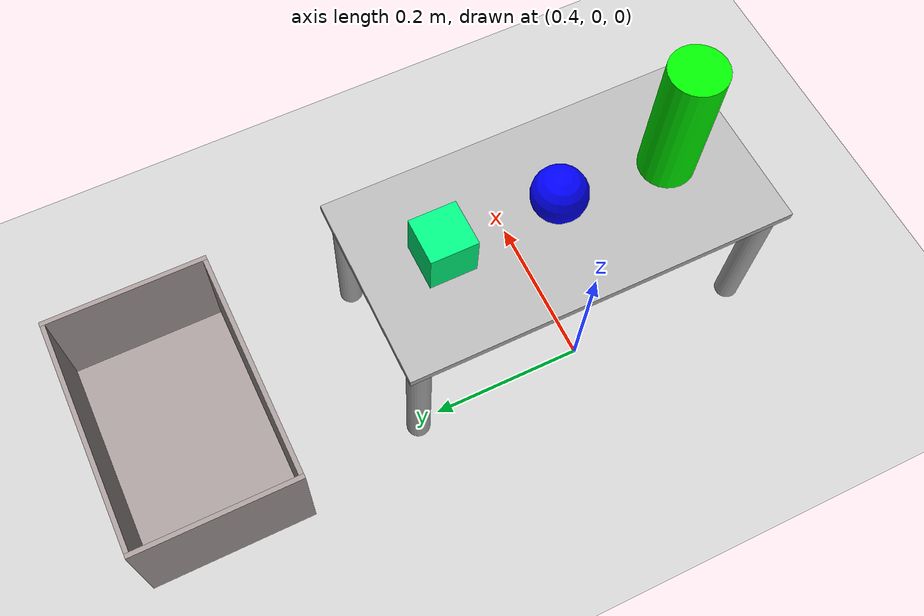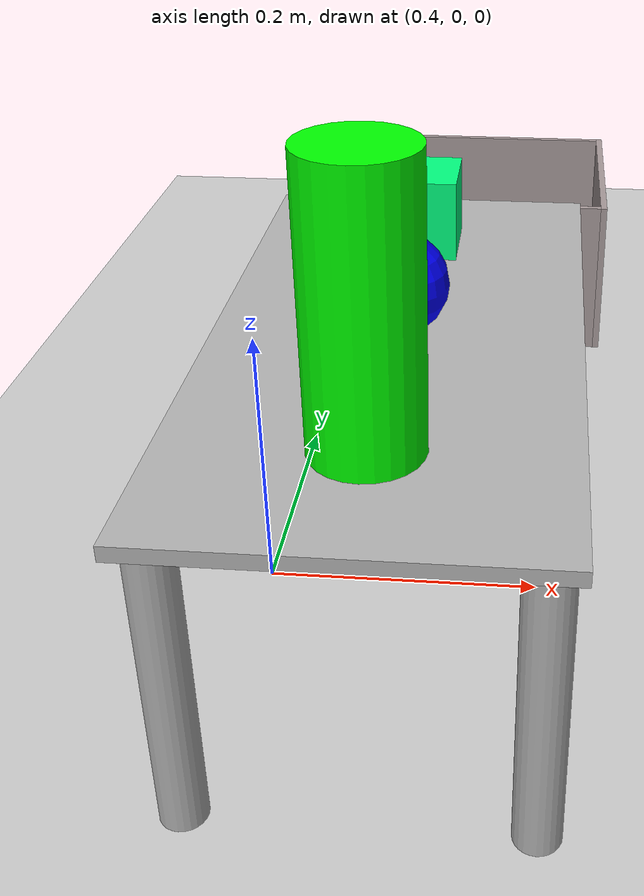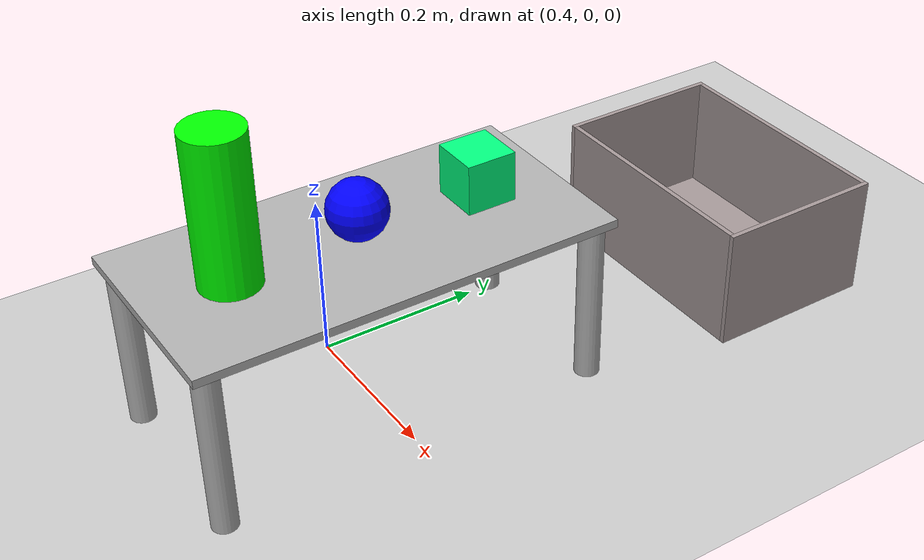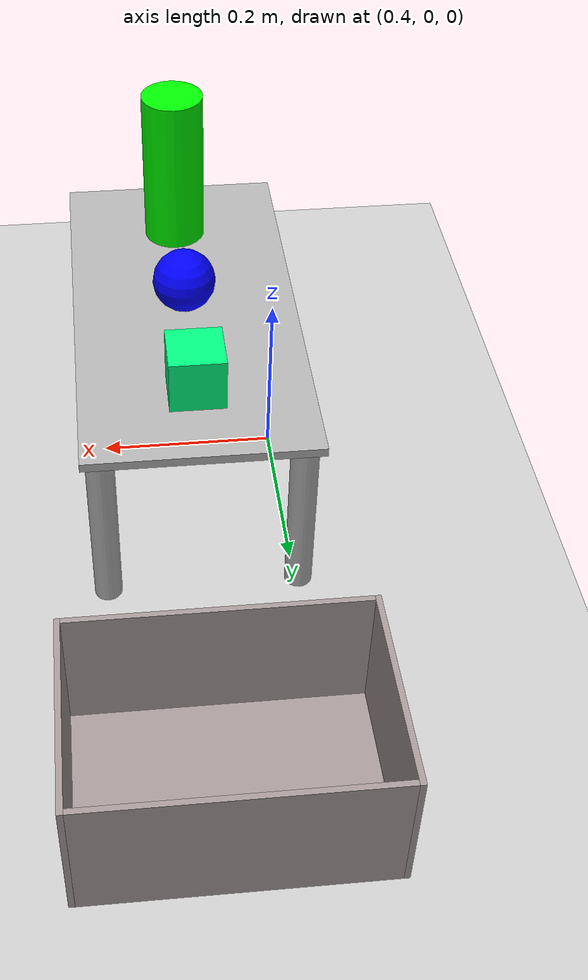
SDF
<sdf version='1.6'>
  <world name='default'>
    <scene>
      <shadows>0</shadows>
    </scene>

    <light name='sun' type='directional'>
      <cast_shadows>0</cast_shadows>
      <pose frame=''>0 0 5 0 -0 0</pose>
      <diffuse>0.8 0.8 0.8 1</diffuse>
      <specular>0.1 0.1 0.1 1</specular>
      <attenuation>
        <range>1000</range>
        <constant>0.9</constant>
        <linear>0.01</linear>
        <quadratic>0.001</quadratic>
      </attenuation>
      <direction>-0.5 0.5 -1</direction>
    </light>

    <physics type='ode'>
      <max_step_size>0.001</max_step_size>
      <real_time_factor>1</real_time_factor>
      <real_time_update_rate>1000</real_time_update_rate>
      <gravity>0 0 -9.8</gravity>
    </physics>

    <include>
      <uri>model://ground_plane</uri>
    </include>

    <include>
      <pose> 0.5 0 0  0 0 0</pose>
      <uri>model://ra_table</uri>
    </include>

    <include>
      <pose> 0.5 0.5 0  0 0 1.5707963</pose>
      <uri>model://ra_basket</uri>
    </include>

    <!-- objects on table -->
    <include>
      <pose> 0.5 0 0.246  0 0 0</pose>
      <uri>model://ra_ball_large</uri>
    </include>

    <include>
      <pose> 0.5 0.15 0.211  0 0 0</pose>
      <uri>model://ra_cube_medium</uri>
    </include>

    <include>
      <pose> 0.5 -0.15 0.211  0 0 0</pose>
      <uri>model://ra_cylinder_large</uri>
    </include>
  </world>
</sdf>

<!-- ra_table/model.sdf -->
<sdf version="1.5">
  <model name="ra_table">
    <static>True</static>
    <link name="link">
      <collision name="plate">
        <pose>0 0 0.205  0 0 0</pose>
        <geometry>
          <box> <size> 0.25 0.50 0.01 </size> </box>
        </geometry>
      </collision>
      <collision name="leg0">
        <pose>0.105 0.23 0.1  0 0 0</pose>
        <geometry>
          <cylinder>
            <radius>0.015</radius>
            <length>0.2</length>
          </cylinder>
        </geometry>
      </collision>
      <collision name="leg1">
        <pose>-0.105 0.23 0.1  0 0 0</pose>
        <geometry>
          <cylinder>
            <radius>0.015</radius>
            <length>0.2</length>
          </cylinder>
        </geometry>
      </collision>
      <collision name="leg2">
        <pose>0.105 -0.23 0.1  0 0 0</pose>
        <geometry>
          <cylinder>
            <radius>0.015</radius>
            <length>0.2</length>
          </cylinder>
        </geometry>
      </collision>
      <collision name="leg3">
        <pose>-0.105 -0.23 0.1  0 0 0</pose>
        <geometry>
          <cylinder>
            <radius>0.015</radius>
            <length>0.2</length>
          </cylinder>
        </geometry>
      </collision>
      <visual name="plate">
        <pose>0 0 0.205  0 0 0</pose>
        <geometry>
          <box> <size> 0.25 0.50 0.01 </size> </box>
        </geometry>
        <material>
          <ambient>.55 .55 .6 1</ambient>
          <diffuse>.7 .7 .7 1</diffuse>
          <specular>0.1 0.1 0.1 1</specular>
        </material>
      </visual>
      <visual name="leg0">
        <pose>0.105 0.23 0.1  0 0 0</pose>
        <geometry>
          <cylinder>
            <radius>0.015</radius>
            <length>0.2</length>
          </cylinder>
        </geometry>
        <material>
          <ambient>.55 .55 .6 1</ambient>
          <diffuse>.7 .7 .7 1</diffuse>
          <specular>0.1 0.1 0.1 1</specular>
        </material>
      </visual>
      <visual name="leg1">
        <pose>-0.105 0.23 0.1  0 0 0</pose>
        <geometry>
          <cylinder>
            <radius>0.015</radius>
            <length>0.2</length>
          </cylinder>
        </geometry>
        <material>
          <ambient>.55 .55 .6 1</ambient>
          <diffuse>.7 .7 .7 1</diffuse>
          <specular>0.1 0.1 0.1 1</specular>
        </material>
      </visual>
      <visual name="leg2">
        <pose>0.105 -0.23 0.1  0 0 0</pose>
        <geometry>
          <cylinder>
            <radius>0.015</radius>
            <length>0.2</length>
          </cylinder>
        </geometry>
        <material>
          <ambient>.55 .55 .6 1</ambient>
          <diffuse>.7 .7 .7 1</diffuse>
          <specular>0.1 0.1 0.1 1</specular>
        </material>
      </visual>
      <visual name="leg3">
        <pose>-0.105 -0.23 0.1  0 0 0</pose>
        <geometry>
          <cylinder>
            <radius>0.015</radius>
            <length>0.2</length>
          </cylinder>
        </geometry>
        <material>
          <ambient>.55 .55 .6 1</ambient>
          <diffuse>.7 .7 .7 1</diffuse>
          <specular>0.1 0.1 0.1 1</specular>
        </material>
      </visual>
    </link>
  </model>
</sdf>

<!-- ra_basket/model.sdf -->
<sdf version="1.5">
  <model name="ra_basket">
    <static>True</static>
    <link name="link">
      <collision name="bottom_plate">
        <pose>0 0 0.003  0 0 0</pose>
        <geometry>
          <box> <size> 0.20 0.30 0.006 </size> </box>
        </geometry>
      </collision>
      <collision name="side_plate0">
        <pose> 0.103 0 0.075  0 0 0</pose>
        <geometry>
          <box> <size> 0.006 0.30 0.15 </size> </box>
        </geometry>
      </collision>
      <collision name="side_plate1">
        <pose>-0.103 0 0.075  0 0 0</pose>
        <geometry>
          <box> <size> 0.006 0.30 0.15 </size> </box>
        </geometry>
      </collision>
      <collision name="side_plate2">
        <pose>0  0.153 0.075  0 0 0</pose>
        <geometry>
          <box> <size> 0.212 0.006 0.15 </size> </box>
        </geometry>
      </collision>
      <collision name="side_plate3">
        <pose>0 -0.153 0.075  0 0 0</pose>
        <geometry>
          <box> <size> 0.212 0.006 0.15 </size> </box>
        </geometry>
      </collision>
      <visual name="bottom_plate">
        <pose>0 0 0.003  0 0 0</pose>
        <geometry>
          <box> <size> 0.20 0.30 0.006 </size> </box>
        </geometry>
        <material>
          <ambient> .6 .55 .55 1</ambient>
          <diffuse>.65 .6  .6  1</diffuse>
          <specular>0.1 0.1 0.1 1</specular>
        </material>
      </visual>
      <visual name="side_plate0">
        <pose> 0.103 0 0.075  0 0 0</pose>
        <geometry>
          <box> <size> 0.006 0.30 0.15 </size> </box>
        </geometry>
        <material>
          <ambient> .6 .55 .55 1</ambient>
          <diffuse>.65 .6  .6  1</diffuse>
          <specular>0.1 0.1 0.1 1</specular>
        </material>
      </visual>
      <visual name="side_plate1">
        <pose>-0.103 0 0.075  0 0 0</pose>
        <geometry>
          <box> <size> 0.006 0.30 0.15 </size> </box>
        </geometry>
        <material>
          <ambient> .6 .55 .55 1</ambient>
          <diffuse>.65 .6  .6  1</diffuse>
          <specular>0.1 0.1 0.1 1</specular>
        </material>
      </visual>
      <visual name="side_plate2">
        <pose>0  0.153 0.075  0 0 0</pose>
        <geometry>
          <box> <size> 0.212 0.006 0.15 </size> </box>
        </geometry>
        <material>
          <ambient> .6 .55 .55 1</ambient>
          <diffuse>.65 .6  .6  1</diffuse>
          <specular>0.1 0.1 0.1 1</specular>
        </material>
      </visual>
      <visual name="side_plate3">
        <pose>0 -0.153 0.075  0 0 0</pose>
        <geometry>
          <box> <size> 0.212 0.006 0.15 </size> </box>
        </geometry>
        <material>
          <ambient> .6 .55 .55 1</ambient>
          <diffuse>.65 .6  .6  1</diffuse>
          <specular>0.1 0.1 0.1 1</specular>
        </material>
      </visual>
    </link>
  </model>
</sdf>

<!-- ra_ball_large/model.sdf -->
<!-- large dia 0.070 / 130g -->
<!-- small dia 0.045 / 130g -->
<sdf version="1.5">
  <model name="ra_ball_large">
    <static>false</static>
    <link name="link">
      <inertial>
        <mass>0.15</mass>
        <pose> 0 0 0   0 0 0</pose>
        <inertia>
          <ixx>3.06e-05</ixx>
          <iyy>3.06e-05</iyy>
          <izz>3.06e-05</izz>
          <ixy>0</ixy>
          <ixz>0</ixz>
          <iyz>0</iyz>
        </inertia>
      </inertial>
      <collision name="collision">
        <geometry>
          <sphere>
            <radius>0.035</radius>
          </sphere>
        </geometry>
      </collision>
      <visual name="visual">
        <geometry>
          <sphere>
            <radius>0.035</radius>
          </sphere>
        </geometry>
        <material>
          <ambient>0 0 1 1</ambient>
          <diffuse>0 0 1 1</diffuse>
          <specular>0.1 0.1 0.1 1</specular>
        </material>
      </visual>
    </link>
  </model>
</sdf>

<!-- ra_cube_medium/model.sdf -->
<sdf version="1.5">
  <model name="ra_cube_medium">
    <static>false</static>
    <link name="link">
      <inertial>
        <mass>0.14</mass>
        <pose> 0 0 0.03   0 0 0</pose>
        <inertia>
          <ixx>8.40e-05</ixx>
          <iyy>8.40e-05</iyy>
          <izz>8.40e-05</izz>
          <ixy>0</ixy>
          <ixz>0</ixz>
          <iyz>0</iyz>
        </inertia>
      </inertial>
      <collision name="collision">
        <pose> 0 0 0.03   0 0 0</pose>
        <geometry>
          <box> <size> 0.06 0.06 0.06 </size> </box>
        </geometry>
      </collision>
      <visual name="visual">
        <pose> 0 0 0.03   0 0 0</pose>
        <geometry>
          <box> <size> 0.06 0.06 0.06 </size> </box>
        </geometry>
        <material>
          <ambient>0 1 0.5 1</ambient>
          <diffuse>0 1 0.5 1</diffuse>
          <specular>0.1 0.1 0.1 1</specular>
        </material>
      </visual>
    </link>
  </model>
</sdf>

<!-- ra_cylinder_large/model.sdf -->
<sdf version="1.5">
  <model name="ra_cylinder_large">
    <static>false</static>
    <link name="link">
      <inertial>
        <mass>0.2</mass>
        <pose> 0 0 0   0 0 0</pose>
        <inertia>
          <ixx>5.6e-4</ixx>
          <iyy>5.6e-4</iyy>
          <izz>4.083e-5</izz>
          <ixy>0</ixy>
          <ixz>0</ixz>
          <iyz>0</iyz>
        </inertia>
      </inertial>
      <collision name="collision">
        <pose>0 0 0.09   0 0 0</pose>
        <geometry>
          <cylinder>
            <length>0.18 </length>
            <radius>0.035</radius>
          </cylinder>
        </geometry>
      </collision>
      <visual name="visual">
        <pose>0 0 0.09   0 0 0</pose>
        <geometry>
          <cylinder>
            <length>0.18 </length>
            <radius>0.035</radius>
          </cylinder>
        </geometry>
        <material>
          <ambient>0 1 0 1</ambient>
          <diffuse>0 1 0 1</diffuse>
          <specular>0.1 0.1 0.1 1</specular>
        </material>
      </visual>
    </link>
  </model>
</sdf>
